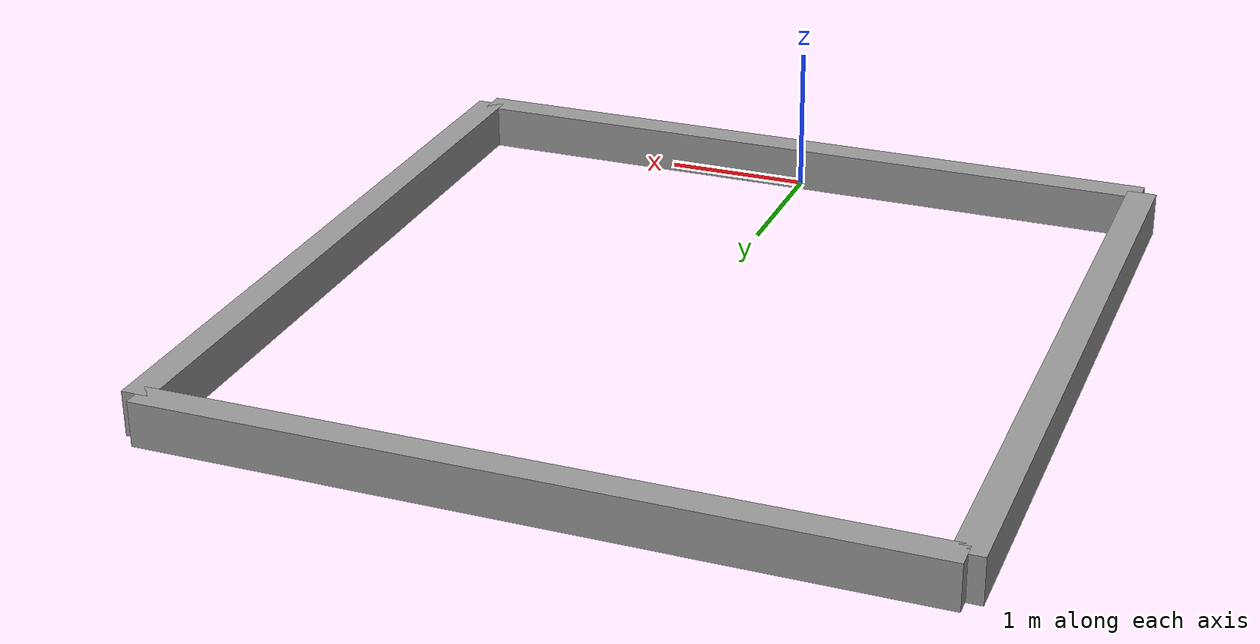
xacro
<?xml version="1.0"?>
<robot xmlns:xacro="http://ros.org/wiki/xacro" name="square_frame">

  <!-- Material -->
  <material name="red">
    <color rgba="0.9 0.2 0.2 1"/>
  </material>

  <!-- Properties for reuse -->
  <xacro:property name="length" value="5.0"/>
  <xacro:property name="height" value="0.3"/>
  <xacro:property name="width"  value="0.2"/>

  <!-- Bottom Box -->
  <link name="bottom_box">
    <visual>
      <geometry>
        <box size="${length} ${width} ${height}"/>
      </geometry>
      <material name="gray"/>
      <origin xyz="0 0 ${height/2}"/>
    </visual>
    <collision>
      <geometry>
        <box size="${length} ${width} ${height}"/>
      </geometry>
      <origin xyz="0 0 ${height/2}"/>
    </collision>
    <inertial>
      <mass value="5"/>
      <inertia ixx="0.1" iyy="0.1" izz="0.1" ixy="0" ixz="0" iyz="0"/>
      <origin xyz="0 0 ${height/2}"/>
    </inertial>
  </link>

  <!-- Top Box -->
  <link name="top_box">
    <visual>
      <geometry>
        <box size="${length} ${width} ${height}"/>
      </geometry>
      <material name="gray"/>
      <origin xyz="0 0 ${height/2}"/>
    </visual>
    <collision>
      <geometry>
        <box size="${length} ${width} ${height}"/>
      </geometry>
      <origin xyz="0 0 ${height/2}"/>
    </collision>
    <inertial>
      <mass value="5"/>
      <inertia ixx="0.1" iyy="0.1" izz="0.1" ixy="0" ixz="0" iyz="0"/>
      <origin xyz="0 0 ${height/2}"/>
    </inertial>
  </link>

  <!-- Left Box -->
  <link name="left_box">
    <visual>
      <geometry>
        <box size="${width} ${length} ${height}"/>
      </geometry>
      <material name="gray"/>
      <origin xyz="0 0 ${height/2}"/>
    </visual>
    <collision>
      <geometry>
        <box size="${width} ${length} ${height}"/>
      </geometry>
      <origin xyz="0 0 ${height/2}"/>
    </collision>
    <inertial>
      <mass value="5"/>
      <inertia ixx="0.1" iyy="0.1" izz="0.1" ixy="0" ixz="0" iyz="0"/>
      <origin xyz="0 0 ${height/2}"/>
    </inertial>
  </link>

  <!-- Right Box -->
  <link name="right_box">
    <visual>
      <geometry>
        <box size="${width} ${length} ${height}"/>
      </geometry>
      <material name="gray"/>
      <origin xyz="0 0 ${height/2}"/>
    </visual>
    <collision>
      <geometry>
        <box size="${width} ${length} ${height}"/>
      </geometry>
      <origin xyz="0 0 ${height/2}"/>
    </collision>
    <inertial>
      <mass value="5"/>
      <inertia ixx="0.1" iyy="0.1" izz="0.1" ixy="0" ixz="0" iyz="0"/>
      <origin xyz="0 0 ${height/2}"/>
    </inertial>
  </link>

  <!-- Joints -->
  <!-- Bottom is the base -->
  <joint name="top_joint" type="fixed">
    <parent link="bottom_box"/>
    <child link="top_box"/>
    <origin xyz="0 5 0" rpy="0 0 0"/>
  </joint>

  <joint name="left_joint" type="fixed">
    <parent link="bottom_box"/>
    <child link="left_box"/>
    <origin xyz="-2.5 2.5 0" rpy="0 0 0"/>
  </joint>

  <joint name="right_joint" type="fixed">
    <parent link="bottom_box"/>
    <child link="right_box"/>
    <origin xyz="2.5 2.5 0" rpy="0 0 0"/>
  </joint>
  <gazebo reference="bottom_box">
    <material>Gazebo/Red</material>
  </gazebo>
  <gazebo reference="top_box">
    <material>Gazebo/Red</material>
  </gazebo>
  <gazebo reference="right_box">
    <material>Gazebo/Red</material>
  </gazebo>
  <gazebo reference="left_box">
    <material>Gazebo/Red</material>
  </gazebo>

</robot>
